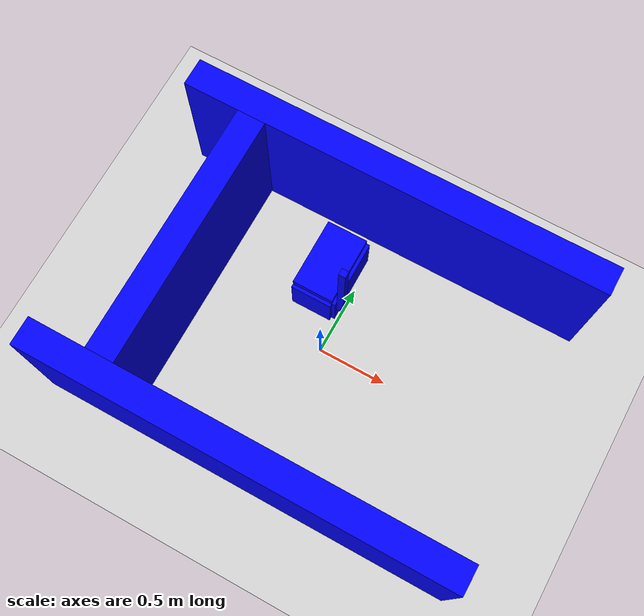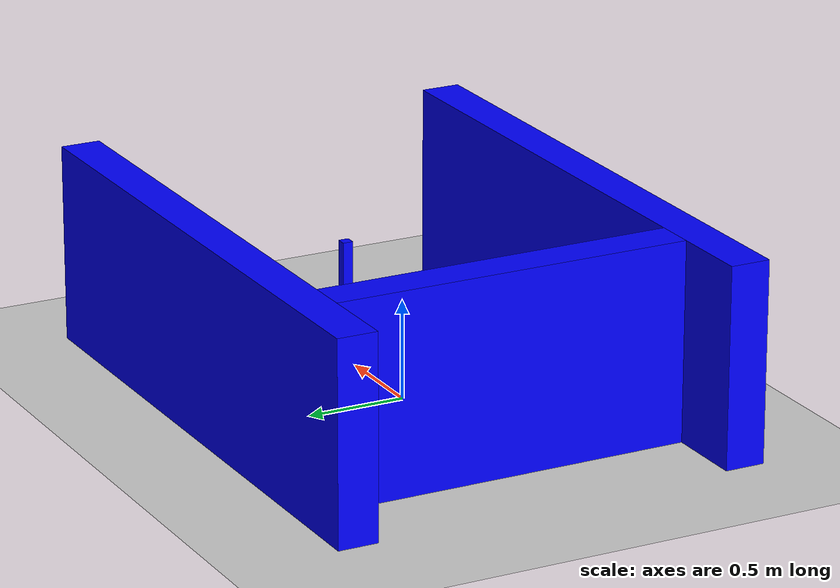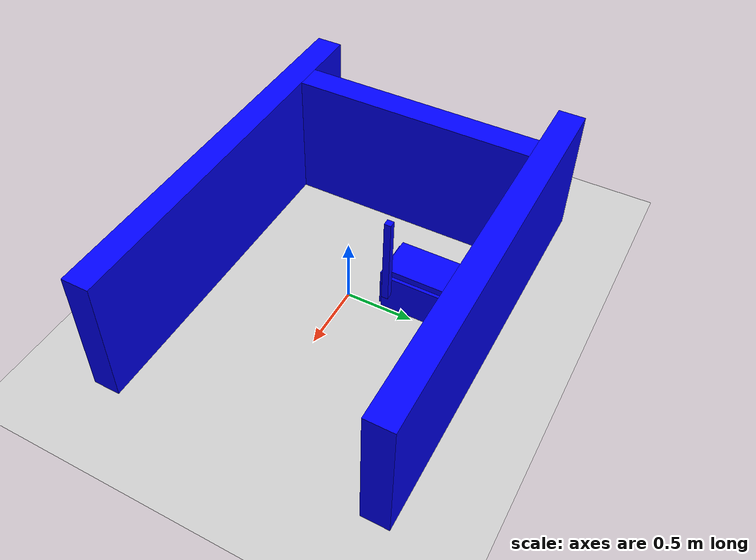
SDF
<?xml version="1.0" ?>
<sdf version="1.7">
  <world name="default">
    <!-- 一个基础的地面 -->
    <include>
      <uri>model://ground_plane</uri>
    </include>

    <!-- 环境光 -->
    <include>
      <uri>model://sun</uri>
    </include>

    <model name="target_box">
      <!-- 设置长方体的位置和姿态 -->
      <!-- 格式: x y z roll pitch yaw -->
      <!-- x=2米, y=-1米, z=0.5米 (因为长方体高度为1米，为了让它恰好在地面上，z轴坐标为其高度的一半) -->
      <pose>-0.2 0.5 0.05 0 0 0</pose>
      <static>true</static> <!-- 设置为true使其固定不动，设置为false则会受物理引擎影响 -->
      <link name="link">
        <collision name="collision">
          <geometry>
            <box>
              <!-- 设置长方体的尺寸 -->
              <!-- 格式: length width height -->
              <!-- 长度=0.8米, 宽度=1.5米, 高度=1米 -->
              <size>0.1 0.1 0.1</size>
            </box>
          </geometry>
        </collision>
        <visual name="visual">
          <geometry>
            <box>
              <!-- 设置长方体的尺寸 (与collision保持一致) -->
              <size>0.1 0.1 0.1</size>
            </box>
          </geometry>
          <!-- 设置长方体的外观颜色 -->
          <material>
            <ambient>0 0 1 1</ambient>
            <diffuse>0 0 1 1</diffuse>
            <specular>0 0 1 1</specular>
          </material>
        </visual>
      </link>
    </model>

    <!-- 您定义的长方体模型 -->
    <model name="my_custom_box">
      <!-- 设置长方体的位置和姿态 -->
      <!-- 格式: x y z roll pitch yaw -->
      <!-- x=2米, y=-1米, z=0.5米 (因为长方体高度为1米，为了让它恰好在地面上，z轴坐标为其高度的一半) -->
      <pose>-0.2 0.5 0.3 0 0 1.57</pose>
      <static>true</static> <!-- 设置为true使其固定不动，设置为false则会受物理引擎影响 -->
      <link name="link">
        <collision name="collision">
          <geometry>
            <box>
              <!-- 设置长方体的尺寸 -->
              <!-- 格式: length width height -->
              <!-- 长度=0.8米, 宽度=1.5米, 高度=1米 -->
              <size>0.5 0.3 0.1</size>
            </box>
          </geometry>
        </collision>
        <visual name="visual">
          <geometry>
            <box>
              <!-- 设置长方体的尺寸 (与collision保持一致) -->
              <size>0.5 0.3 0.1</size>
            </box>
          </geometry>
          <!-- 设置长方体的外观颜色 -->
          <material>
            <ambient>0 0 1 1</ambient>
            <diffuse>0 0 1 1</diffuse>
            <specular>0 0 1 1</specular>
          </material>
        </visual>
      </link>
    </model>

    <model name="my_custom_box_2">
      <!-- 设置长方体的位置和姿态 -->
      <!-- 格式: x y z roll pitch yaw -->
      <!-- x=2米, y=-1米, z=0.5米 (因为长方体高度为1米，为了让它恰好在地面上，z轴坐标为其高度的一半) -->
      <pose>-0.05 0.5 0.15 0 0 1.57</pose>
      <static>true</static> <!-- 设置为true使其固定不动，设置为false则会受物理引擎影响 -->
      <link name="link">
        <collision name="collision">
          <geometry>
            <box>
              <!-- 设置长方体的尺寸 -->
              <!-- 格式: length width height -->
              <!-- 长度=0.8米, 宽度=1.5米, 高度=1米 -->
              <size>0.5 0.05 0.3</size>
            </box>
          </geometry>
        </collision>
        <visual name="visual">
          <geometry>
            <box>
              <!-- 设置长方体的尺寸 (与collision保持一致) -->
              <size>0.5 0.05 0.3</size>
            </box>
          </geometry>
          <!-- 设置长方体的外观颜色 -->
          <material>
            <ambient>0 0 1 1</ambient>
            <diffuse>0 0 1 1</diffuse>
            <specular>0 0 1 1</specular>
          </material>
        </visual>
      </link>
    </model>

    <model name="my_custom_box_3">
      <!-- 设置长方体的位置和姿态 -->
      <!-- 格式: x y z roll pitch yaw -->
      <!-- x=2米, y=-1米, z=0.5米 (因为长方体高度为1米，为了让它恰好在地面上，z轴坐标为其高度的一半) -->
      <pose>-0.2 0.25 0.15 0 0 1.57</pose>
      <static>true</static> <!-- 设置为true使其固定不动，设置为false则会受物理引擎影响 -->
      <link name="link">
        <collision name="collision">
          <geometry>
            <box>
              <!-- 设置长方体的尺寸 -->
              <!-- 格式: length width height -->
              <!-- 长度=0.8米, 宽度=1.5米, 高度=1米 -->
              <size>0.05 0.3 0.3</size>
            </box>
          </geometry>
        </collision>
        <visual name="visual">
          <geometry>
            <box>
              <!-- 设置长方体的尺寸 (与collision保持一致) -->
              <size>0.05 0.3 0.3</size>
            </box>
          </geometry>
          <!-- 设置长方体的外观颜色 -->
          <material>
            <ambient>0 0 1 1</ambient>
            <diffuse>0 0 1 1</diffuse>
            <specular>0 0 1 1</specular>
          </material>
        </visual>
      </link>
    </model>

    <model name="obstacle_1">
      <!-- 设置长方体的位置和姿态 -->
      <!-- 格式: x y z roll pitch yaw -->
      <!-- x=2米, y=-1米, z=0.5米 (因为长方体高度为1米，为了让它恰好在地面上，z轴坐标为其高度的一半) -->
      <pose>0 0.3 0.5 0 0 0</pose>
      <static>true</static> <!-- 设置为true使其固定不动，设置为false则会受物理引擎影响 -->
      <link name="link">
        <collision name="collision">
          <geometry>
            <box>
              <!-- 设置长方体的尺寸 -->
              <!-- 格式: length width height -->
              <!-- 长度=0.8米, 宽度=1.5米, 高度=1米 -->
              <size>0.05 0.05 0.7</size>
            </box>
          </geometry>
        </collision>
        <visual name="visual">
          <geometry>
            <box>
              <!-- 设置长方体的尺寸 (与collision保持一致) -->
              <size>0.05 0.05 0.7</size>
            </box>
          </geometry>
          <!-- 设置长方体的外观颜色 -->
          <material>
            <ambient>0 0 1 1</ambient>
            <diffuse>0 0 1 1</diffuse>
            <specular>0 0 1 1</specular>
          </material>
        </visual>
      </link>
    </model>

    <model name="wall_1">
      <!-- 设置长方体的位置和姿态 -->
      <!-- 格式: x y z roll pitch yaw -->
      <!-- x=2米, y=-1米, z=0.5米 (因为长方体高度为1米，为了让它恰好在地面上，z轴坐标为其高度的一半) -->
      <pose>0 1.0 0.5 0 0 0</pose>
      <static>true</static> <!-- 设置为true使其固定不动，设置为false则会受物理引擎影响 -->
      <link name="link">
        <collision name="collision">
          <geometry>
            <box>
              <!-- 设置长方体的尺寸 -->
              <!-- 格式: length width height -->
              <!-- 长度=0.8米, 宽度=1.5米, 高度=1米 -->
              <size>3.0 0.2 1.0</size>
            </box>
          </geometry>
        </collision>
        <visual name="visual">
          <geometry>
            <box>
              <!-- 设置长方体的尺寸 (与collision保持一致) -->
              <size>3.0 0.2 1.0</size>
            </box>
          </geometry>
          <!-- 设置长方体的外观颜色 -->
          <material>
            <ambient>0 0 1 1</ambient>
            <diffuse>0 0 1 1</diffuse>
            <specular>0 0 1 1</specular>
          </material>
        </visual>
      </link>
    </model>

    <model name="wall_2">
      <!-- 设置长方体的位置和姿态 -->
      <!-- 格式: x y z roll pitch yaw -->
      <!-- x=2米, y=-1米, z=0.5米 (因为长方体高度为1米，为了让它恰好在地面上，z轴坐标为其高度的一半) -->
      <pose>0 -1.0 0.5 0 0 0</pose>
      <static>true</static> <!-- 设置为true使其固定不动，设置为false则会受物理引擎影响 -->
      <link name="link">
        <collision name="collision">
          <geometry>
            <box>
              <!-- 设置长方体的尺寸 -->
              <!-- 格式: length width height -->
              <!-- 长度=0.8米, 宽度=1.5米, 高度=1米 -->
              <size>3.0 0.2 1.0</size>
            </box>
          </geometry>
        </collision>
        <visual name="visual">
          <geometry>
            <box>
              <!-- 设置长方体的尺寸 (与collision保持一致) -->
              <size>3.0 0.2 1.0</size>
            </box>
          </geometry>
          <!-- 设置长方体的外观颜色 -->
          <material>
            <ambient>0 0 1 1</ambient>
            <diffuse>0 0 1 1</diffuse>
            <specular>0 0 1 1</specular>
          </material>
        </visual>
      </link>
    </model>

    <model name="wall_3">
      <!-- 设置长方体的位置和姿态 -->
      <!-- 格式: x y z roll pitch yaw -->
      <!-- x=2米, y=-1米, z=0.5米 (因为长方体高度为1米，为了让它恰好在地面上，z轴坐标为其高度的一半) -->
      <pose>-1.0 0.0 0.5 0 0 0</pose>
      <static>true</static> <!-- 设置为true使其固定不动，设置为false则会受物理引擎影响 -->
      <link name="link">
        <collision name="collision">
          <geometry>
            <box>
              <!-- 设置长方体的尺寸 -->
              <!-- 格式: length width height -->
              <!-- 长度=0.8米, 宽度=1.5米, 高度=1米 -->
              <size>0.2 1.8 1.0</size>
            </box>
          </geometry>
        </collision>
        <visual name="visual">
          <geometry>
            <box>
              <!-- 设置长方体的尺寸 (与collision保持一致) -->
              <size>0.2 1.8 1.0</size>
            </box>
          </geometry>
          <!-- 设置长方体的外观颜色 -->
          <material>
            <ambient>0 0 1 1</ambient>
            <diffuse>0 0 1 1</diffuse>
            <specular>0 0 1 1</specular>
          </material>
        </visual>
      </link>
    </model>
  </world>
</sdf>
